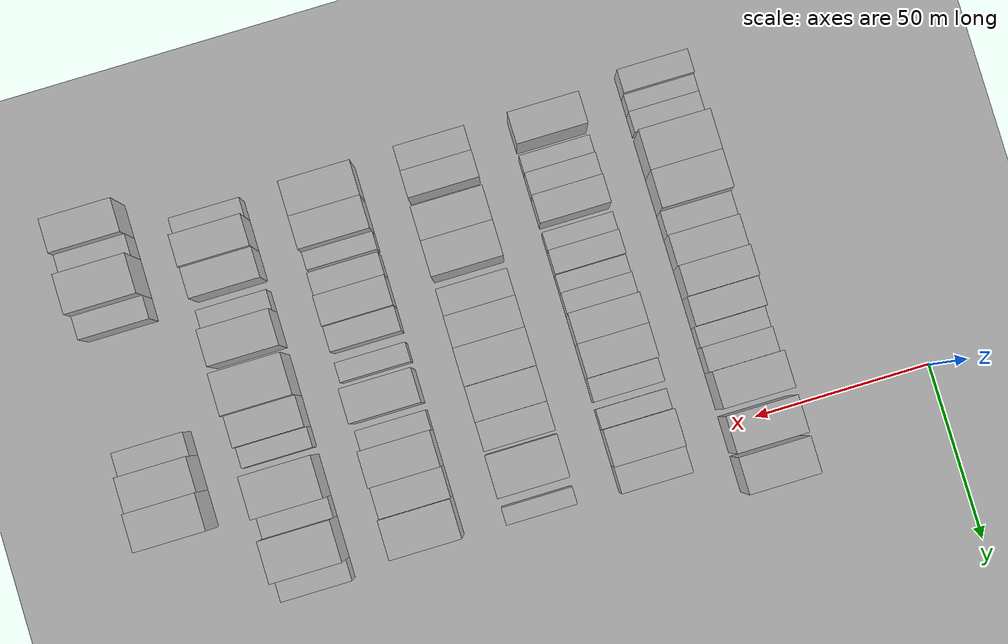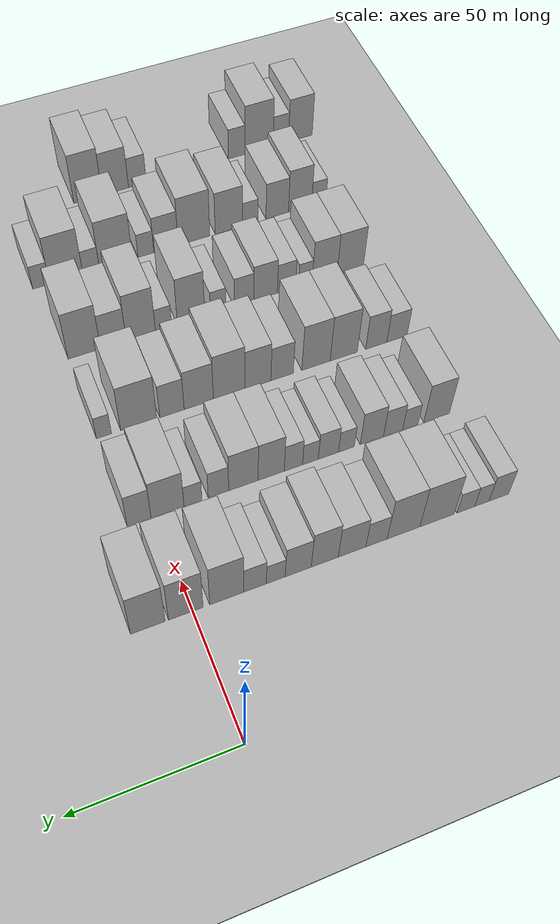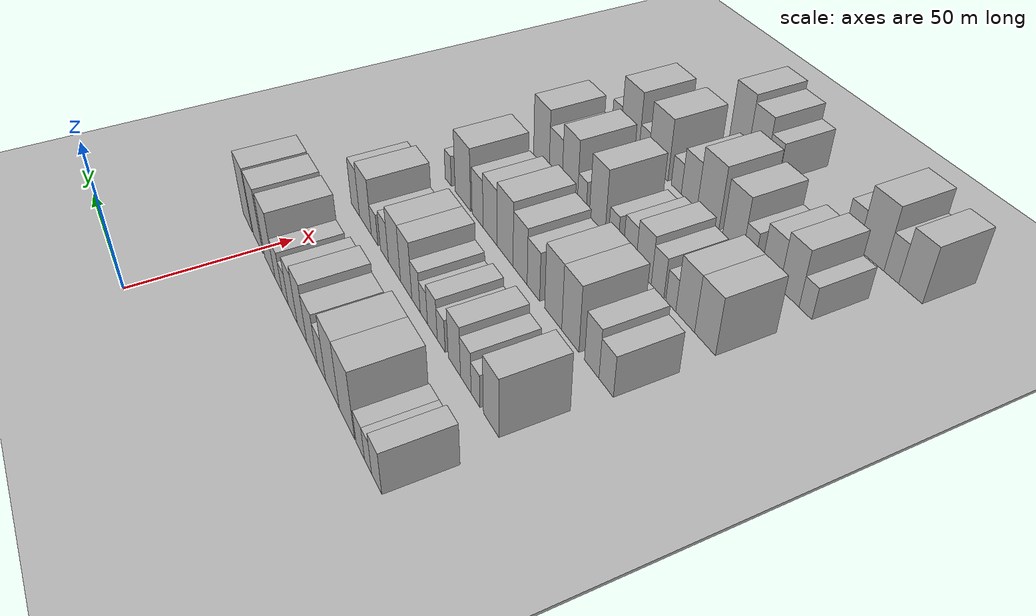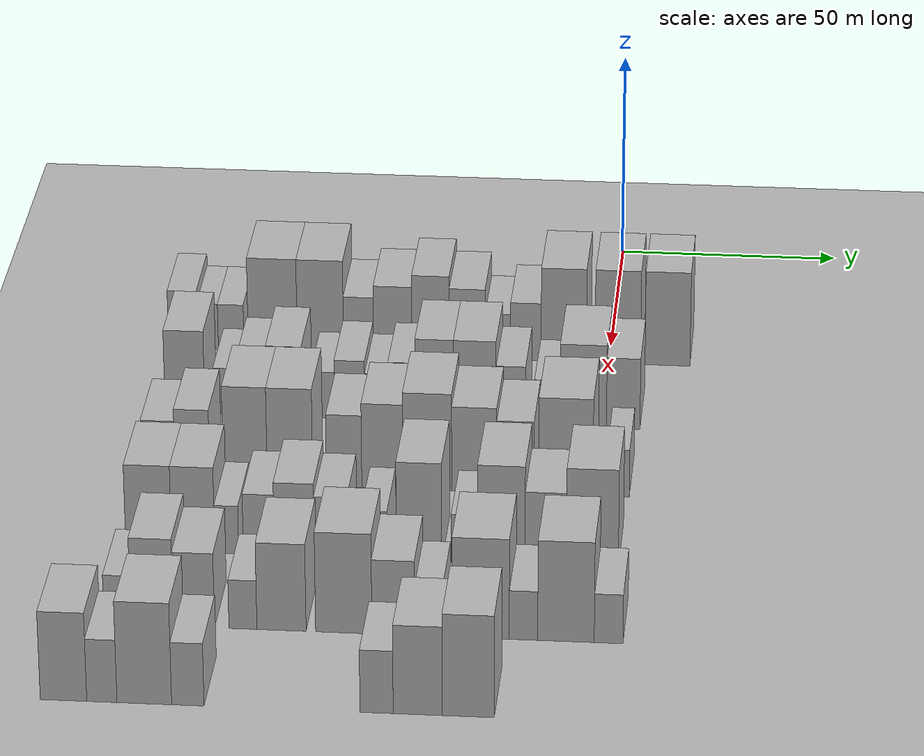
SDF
<sdf version="1.6">
 <world name="default">
  <include><name>ground_plane_1</name><uri>model://HANNAS_ground_plane</uri></include>
  <include>
   <name>ground_plane_2</name>
   <uri>model://HANNAS_ground_plane</uri>
   <pose>100 0 0  0 0 0</pose>
  </include>
  <model name="building_51">
   <static>1</static>
   <pose>50.0000 -97.6213 0 0.000000 0.000000 0.000000</pose>
   <link name="link">
    <pose>0 0 7.50 0 0 0</pose>
    <collision name="collision"><geometry><box><size>20.0000 6.6466 15.0000</size></box></geometry></collision>
    <visual name="visual">
     <cast_shadows>0</cast_shadows>
     <geometry><box><size>20.0000 6.6466 15.0000</size></box></geometry>
     <material>
      <script>
       <uri>model://HANNAS_wall/materials/scripts</uri>
       <uri>model://HANNAS_wall/materials/textures</uri>
       <name>vrc/HANNAS_wall</name>
      </script>
     </material>
    </visual>
   </link>
  </model>
  <model name="building_52">
   <static>1</static>
   <pose>50.0000 -91.8817 0 0.000000 0.000000 0.000000</pose>
   <link name="link">
    <pose>0 0 6.00 0 0 0</pose>
    <collision name="collision"><geometry><box><size>20.0000 4.8325 12.0000</size></box></geometry></collision>
    <visual name="visual">
     <cast_shadows>0</cast_shadows>
     <geometry><box><size>20.0000 4.8325 12.0000</size></box></geometry>
     <material>
      <script>
       <uri>model://HANNAS_wall/materials/scripts</uri>
       <uri>model://HANNAS_wall/materials/textures</uri>
       <name>vrc/HANNAS_wall</name>
      </script>
     </material>
    </visual>
   </link>
  </model>
  <model name="building_53">
   <static>1</static>
   <pose>50.0000 -86.5118 0 0.000000 0.000000 0.000000</pose>
   <link name="link">
    <pose>0 0 6.00 0 0 0</pose>
    <collision name="collision"><geometry><box><size>20.0000 5.9075 12.0000</size></box></geometry></collision>
    <visual name="visual">
     <cast_shadows>0</cast_shadows>
     <geometry><box><size>20.0000 5.9075 12.0000</size></box></geometry>
     <material>
      <script>
       <uri>model://HANNAS_wall/materials/scripts</uri>
       <uri>model://HANNAS_wall/materials/textures</uri>
       <name>vrc/HANNAS_wall</name>
      </script>
     </material>
    </visual>
   </link>
  </model>
  <model name="building_54">
   <static>1</static>
   <pose>50.0000 -76.9226 0 0.000000 0.000000 0.000000</pose>
   <link name="link">
    <pose>0 0 12.00 0 0 0</pose>
    <collision name="collision"><geometry><box><size>20.0000 11.2709 24.0000</size></box></geometry></collision>
    <visual name="visual">
     <cast_shadows>0</cast_shadows>
     <geometry><box><size>20.0000 11.2709 24.0000</size></box></geometry>
     <material>
      <script>
       <uri>model://HANNAS_wall/materials/scripts</uri>
       <uri>model://HANNAS_wall/materials/textures</uri>
       <name>vrc/HANNAS_wall</name>
      </script>
     </material>
    </visual>
   </link>
  </model>
  <model name="building_55">
   <static>1</static>
   <pose>50.0000 -65.9639 0 0.000000 0.000000 0.000000</pose>
   <link name="link">
    <pose>0 0 12.00 0 0 0</pose>
    <collision name="collision"><geometry><box><size>20.0000 10.6465 24.0000</size></box></geometry></collision>
    <visual name="visual">
     <cast_shadows>0</cast_shadows>
     <geometry><box><size>20.0000 10.6465 24.0000</size></box></geometry>
     <material>
      <script>
       <uri>model://HANNAS_wall/materials/scripts</uri>
       <uri>model://HANNAS_wall/materials/textures</uri>
       <name>vrc/HANNAS_wall</name>
      </script>
     </material>
    </visual>
   </link>
  </model>
  <model name="building_56">
   <static>1</static>
   <pose>50.0000 -57.1928 0 0.000000 0.000000 0.000000</pose>
   <link name="link">
    <pose>0 0 7.50 0 0 0</pose>
    <collision name="collision"><geometry><box><size>20.0000 6.8957 15.0000</size></box></geometry></collision>
    <visual name="visual">
     <cast_shadows>0</cast_shadows>
     <geometry><box><size>20.0000 6.8957 15.0000</size></box></geometry>
     <material>
      <script>
       <uri>model://HANNAS_wall/materials/scripts</uri>
       <uri>model://HANNAS_wall/materials/textures</uri>
       <name>vrc/HANNAS_wall</name>
      </script>
     </material>
    </visual>
   </link>
  </model>
  <model name="building_57">
   <static>1</static>
   <pose>50.0000 -49.3403 0 0.000000 0.000000 0.000000</pose>
   <link name="link">
    <pose>0 0 9.00 0 0 0</pose>
    <collision name="collision"><geometry><box><size>20.0000 8.8094 18.0000</size></box></geometry></collision>
    <visual name="visual">
     <cast_shadows>0</cast_shadows>
     <geometry><box><size>20.0000 8.8094 18.0000</size></box></geometry>
     <material>
      <script>
       <uri>model://HANNAS_wall/materials/scripts</uri>
       <uri>model://HANNAS_wall/materials/textures</uri>
       <name>vrc/HANNAS_wall</name>
      </script>
     </material>
    </visual>
   </link>
  </model>
  <model name="building_58">
   <static>1</static>
   <pose>50.0000 -40.6614 0 0.000000 0.000000 0.000000</pose>
   <link name="link">
    <pose>0 0 10.50 0 0 0</pose>
    <collision name="collision"><geometry><box><size>20.0000 8.5483 21.0000</size></box></geometry></collision>
    <visual name="visual">
     <cast_shadows>0</cast_shadows>
     <geometry><box><size>20.0000 8.5483 21.0000</size></box></geometry>
     <material>
      <script>
       <uri>model://HANNAS_wall/materials/scripts</uri>
       <uri>model://HANNAS_wall/materials/textures</uri>
       <name>vrc/HANNAS_wall</name>
      </script>
     </material>
    </visual>
   </link>
  </model>
  <model name="building_59">
   <static>1</static>
   <pose>50.0000 -32.2992 0 0.000000 0.000000 0.000000</pose>
   <link name="link">
    <pose>0 0 9.00 0 0 0</pose>
    <collision name="collision"><geometry><box><size>20.0000 8.1760 18.0000</size></box></geometry></collision>
    <visual name="visual">
     <cast_shadows>0</cast_shadows>
     <geometry><box><size>20.0000 8.1760 18.0000</size></box></geometry>
     <material>
      <script>
       <uri>model://HANNAS_wall/materials/scripts</uri>
       <uri>model://HANNAS_wall/materials/textures</uri>
       <name>vrc/HANNAS_wall</name>
      </script>
     </material>
    </visual>
   </link>
  </model>
  <model name="building_60">
   <static>1</static>
   <pose>50.0000 -25.2892 0 0.000000 0.000000 0.000000</pose>
   <link name="link">
    <pose>0 0 6.00 0 0 0</pose>
    <collision name="collision"><geometry><box><size>20.0000 5.8441 12.0000</size></box></geometry></collision>
    <visual name="visual">
     <cast_shadows>0</cast_shadows>
     <geometry><box><size>20.0000 5.8441 12.0000</size></box></geometry>
     <material>
      <script>
       <uri>model://HANNAS_wall/materials/scripts</uri>
       <uri>model://HANNAS_wall/materials/textures</uri>
       <name>vrc/HANNAS_wall</name>
      </script>
     </material>
    </visual>
   </link>
  </model>
  <model name="building_61">
   <static>1</static>
   <pose>50.0000 -18.8741 0 0.000000 0.000000 0.000000</pose>
   <link name="link">
    <pose>0 0 7.50 0 0 0</pose>
    <collision name="collision"><geometry><box><size>20.0000 6.9859 15.0000</size></box></geometry></collision>
    <visual name="visual">
     <cast_shadows>0</cast_shadows>
     <geometry><box><size>20.0000 6.9859 15.0000</size></box></geometry>
     <material>
      <script>
       <uri>model://HANNAS_wall/materials/scripts</uri>
       <uri>model://HANNAS_wall/materials/textures</uri>
       <name>vrc/HANNAS_wall</name>
      </script>
     </material>
    </visual>
   </link>
  </model>
  <model name="building_62">
   <static>1</static>
   <pose>50.0000 -10.2212 0 0.000000 0.000000 0.000000</pose>
   <link name="link">
    <pose>0 0 12.00 0 0 0</pose>
    <collision name="collision"><geometry><box><size>20.0000 10.3200 24.0000</size></box></geometry></collision>
    <visual name="visual">
     <cast_shadows>0</cast_shadows>
     <geometry><box><size>20.0000 10.3200 24.0000</size></box></geometry>
     <material>
      <script>
       <uri>model://HANNAS_wall/materials/scripts</uri>
       <uri>model://HANNAS_wall/materials/textures</uri>
       <name>vrc/HANNAS_wall</name>
      </script>
     </material>
    </visual>
   </link>
  </model>
  <model name="building_63">
   <static>1</static>
   <pose>50.0000 2.1206 0 0.000000 0.000000 0.000000</pose>
   <link name="link">
    <pose>0 0 12.00 0 0 0</pose>
    <collision name="collision"><geometry><box><size>20.0000 10.3635 24.0000</size></box></geometry></collision>
    <visual name="visual">
     <cast_shadows>0</cast_shadows>
     <geometry><box><size>20.0000 10.3635 24.0000</size></box></geometry>
     <material>
      <script>
       <uri>model://HANNAS_wall/materials/scripts</uri>
       <uri>model://HANNAS_wall/materials/textures</uri>
       <name>vrc/HANNAS_wall</name>
      </script>
     </material>
    </visual>
   </link>
  </model>
  <model name="building_64">
   <static>1</static>
   <pose>50.0000 13.4297 0 0.000000 0.000000 0.000000</pose>
   <link name="link">
    <pose>0 0 12.00 0 0 0</pose>
    <collision name="collision"><geometry><box><size>20.0000 10.2548 24.0000</size></box></geometry></collision>
    <visual name="visual">
     <cast_shadows>0</cast_shadows>
     <geometry><box><size>20.0000 10.2548 24.0000</size></box></geometry>
     <material>
      <script>
       <uri>model://HANNAS_wall/materials/scripts</uri>
       <uri>model://HANNAS_wall/materials/textures</uri>
       <name>vrc/HANNAS_wall</name>
      </script>
     </material>
    </visual>
   </link>
  </model>
  <model name="building_171">
   <static>1</static>
   <pose>82.0000 -93.0246 0 0.000000 0.000000 0.000000</pose>
   <link name="link">
    <pose>0 0 10.50 0 0 0</pose>
    <collision name="collision"><geometry><box><size>20.0000 8.9493 21.0000</size></box></geometry></collision>
    <visual name="visual">
     <cast_shadows>0</cast_shadows>
     <geometry><box><size>20.0000 8.9493 21.0000</size></box></geometry>
     <material>
      <script>
       <uri>model://HANNAS_wall/materials/scripts</uri>
       <uri>model://HANNAS_wall/materials/textures</uri>
       <name>vrc/HANNAS_wall</name>
      </script>
     </material>
    </visual>
   </link>
  </model>
  <model name="building_172">
   <static>1</static>
   <pose>82.0000 -83.8953 0 0.000000 0.000000 0.000000</pose>
   <link name="link">
    <pose>0 0 6.00 0 0 0</pose>
    <collision name="collision"><geometry><box><size>20.0000 5.3094 12.0000</size></box></geometry></collision>
    <visual name="visual">
     <cast_shadows>0</cast_shadows>
     <geometry><box><size>20.0000 5.3094 12.0000</size></box></geometry>
     <material>
      <script>
       <uri>model://HANNAS_wall/materials/scripts</uri>
       <uri>model://HANNAS_wall/materials/textures</uri>
       <name>vrc/HANNAS_wall</name>
      </script>
     </material>
    </visual>
   </link>
  </model>
  <model name="building_173">
   <static>1</static>
   <pose>82.0000 -77.9438 0 0.000000 0.000000 0.000000</pose>
   <link name="link">
    <pose>0 0 7.50 0 0 0</pose>
    <collision name="collision"><geometry><box><size>20.0000 6.5935 15.0000</size></box></geometry></collision>
    <visual name="visual">
     <cast_shadows>0</cast_shadows>
     <geometry><box><size>20.0000 6.5935 15.0000</size></box></geometry>
     <material>
      <script>
       <uri>model://HANNAS_wall/materials/scripts</uri>
       <uri>model://HANNAS_wall/materials/textures</uri>
       <name>vrc/HANNAS_wall</name>
      </script>
     </material>
    </visual>
   </link>
  </model>
  <model name="building_174">
   <static>1</static>
   <pose>82.0000 -70.6756 0 0.000000 0.000000 0.000000</pose>
   <link name="link">
    <pose>0 0 9.00 0 0 0</pose>
    <collision name="collision"><geometry><box><size>20.0000 7.9430 18.0000</size></box></geometry></collision>
    <visual name="visual">
     <cast_shadows>0</cast_shadows>
     <geometry><box><size>20.0000 7.9430 18.0000</size></box></geometry>
     <material>
      <script>
       <uri>model://HANNAS_wall/materials/scripts</uri>
       <uri>model://HANNAS_wall/materials/textures</uri>
       <name>vrc/HANNAS_wall</name>
      </script>
     </material>
    </visual>
   </link>
  </model>
  <model name="building_175">
   <static>1</static>
   <pose>82.0000 -62.0339 0 0.000000 0.000000 0.000000</pose>
   <link name="link">
    <pose>0 0 6.00 0 0 0</pose>
    <collision name="collision"><geometry><box><size>20.0000 5.3404 12.0000</size></box></geometry></collision>
    <visual name="visual">
     <cast_shadows>0</cast_shadows>
     <geometry><box><size>20.0000 5.3404 12.0000</size></box></geometry>
     <material>
      <script>
       <uri>model://HANNAS_wall/materials/scripts</uri>
       <uri>model://HANNAS_wall/materials/textures</uri>
       <name>vrc/HANNAS_wall</name>
      </script>
     </material>
    </visual>
   </link>
  </model>
  <model name="building_176">
   <static>1</static>
   <pose>82.0000 -55.9721 0 0.000000 0.000000 0.000000</pose>
   <link name="link">
    <pose>0 0 7.50 0 0 0</pose>
    <collision name="collision"><geometry><box><size>20.0000 6.7833 15.0000</size></box></geometry></collision>
    <visual name="visual">
     <cast_shadows>0</cast_shadows>
     <geometry><box><size>20.0000 6.7833 15.0000</size></box></geometry>
     <material>
      <script>
       <uri>model://HANNAS_wall/materials/scripts</uri>
       <uri>model://HANNAS_wall/materials/textures</uri>
       <name>vrc/HANNAS_wall</name>
      </script>
     </material>
    </visual>
   </link>
  </model>
  <model name="building_177">
   <static>1</static>
   <pose>82.0000 -49.9755 0 0.000000 0.000000 0.000000</pose>
   <link name="link">
    <pose>0 0 6.00 0 0 0</pose>
    <collision name="collision"><geometry><box><size>20.0000 5.2097 12.0000</size></box></geometry></collision>
    <visual name="visual">
     <cast_shadows>0</cast_shadows>
     <geometry><box><size>20.0000 5.2097 12.0000</size></box></geometry>
     <material>
      <script>
       <uri>model://HANNAS_wall/materials/scripts</uri>
       <uri>model://HANNAS_wall/materials/textures</uri>
       <name>vrc/HANNAS_wall</name>
      </script>
     </material>
    </visual>
   </link>
  </model>
  <model name="building_178">
   <static>1</static>
   <pose>82.0000 -44.3319 0 0.000000 0.000000 0.000000</pose>
   <link name="link">
    <pose>0 0 7.50 0 0 0</pose>
    <collision name="collision"><geometry><box><size>20.0000 6.0776 15.0000</size></box></geometry></collision>
    <visual name="visual">
     <cast_shadows>0</cast_shadows>
     <geometry><box><size>20.0000 6.0776 15.0000</size></box></geometry>
     <material>
      <script>
       <uri>model://HANNAS_wall/materials/scripts</uri>
       <uri>model://HANNAS_wall/materials/textures</uri>
       <name>vrc/HANNAS_wall</name>
      </script>
     </material>
    </visual>
   </link>
  </model>
  <model name="building_179">
   <static>1</static>
   <pose>82.0000 -37.0064 0 0.000000 0.000000 0.000000</pose>
   <link name="link">
    <pose>0 0 10.50 0 0 0</pose>
    <collision name="collision"><geometry><box><size>20.0000 8.5734 21.0000</size></box></geometry></collision>
    <visual name="visual">
     <cast_shadows>0</cast_shadows>
     <geometry><box><size>20.0000 8.5734 21.0000</size></box></geometry>
     <material>
      <script>
       <uri>model://HANNAS_wall/materials/scripts</uri>
       <uri>model://HANNAS_wall/materials/textures</uri>
       <name>vrc/HANNAS_wall</name>
      </script>
     </material>
    </visual>
   </link>
  </model>
  <model name="building_180">
   <static>1</static>
   <pose>82.0000 -27.9647 0 0.000000 0.000000 0.000000</pose>
   <link name="link">
    <pose>0 0 10.50 0 0 0</pose>
    <collision name="collision"><geometry><box><size>20.0000 9.5098 21.0000</size></box></geometry></collision>
    <visual name="visual">
     <cast_shadows>0</cast_shadows>
     <geometry><box><size>20.0000 9.5098 21.0000</size></box></geometry>
     <material>
      <script>
       <uri>model://HANNAS_wall/materials/scripts</uri>
       <uri>model://HANNAS_wall/materials/textures</uri>
       <name>vrc/HANNAS_wall</name>
      </script>
     </material>
    </visual>
   </link>
  </model>
  <model name="building_181">
   <static>1</static>
   <pose>82.0000 -19.9243 0 0.000000 0.000000 0.000000</pose>
   <link name="link">
    <pose>0 0 7.50 0 0 0</pose>
    <collision name="collision"><geometry><box><size>20.0000 6.5710 15.0000</size></box></geometry></collision>
    <visual name="visual">
     <cast_shadows>0</cast_shadows>
     <geometry><box><size>20.0000 6.5710 15.0000</size></box></geometry>
     <material>
      <script>
       <uri>model://HANNAS_wall/materials/scripts</uri>
       <uri>model://HANNAS_wall/materials/textures</uri>
       <name>vrc/HANNAS_wall</name>
      </script>
     </material>
    </visual>
   </link>
  </model>
  <model name="building_182">
   <static>1</static>
   <pose>82.0000 -11.7941 0 0.000000 0.000000 0.000000</pose>
   <link name="link">
    <pose>0 0 6.00 0 0 0</pose>
    <collision name="collision"><geometry><box><size>20.0000 5.6893 12.0000</size></box></geometry></collision>
    <visual name="visual">
     <cast_shadows>0</cast_shadows>
     <geometry><box><size>20.0000 5.6893 12.0000</size></box></geometry>
     <material>
      <script>
       <uri>model://HANNAS_wall/materials/scripts</uri>
       <uri>model://HANNAS_wall/materials/textures</uri>
       <name>vrc/HANNAS_wall</name>
      </script>
     </material>
    </visual>
   </link>
  </model>
  <model name="building_183">
   <static>1</static>
   <pose>82.0000 -3.7559 0 0.000000 0.000000 0.000000</pose>
   <link name="link">
    <pose>0 0 10.50 0 0 0</pose>
    <collision name="collision"><geometry><box><size>20.0000 10.3873 21.0000</size></box></geometry></collision>
    <visual name="visual">
     <cast_shadows>0</cast_shadows>
     <geometry><box><size>20.0000 10.3873 21.0000</size></box></geometry>
     <material>
      <script>
       <uri>model://HANNAS_wall/materials/scripts</uri>
       <uri>model://HANNAS_wall/materials/textures</uri>
       <name>vrc/HANNAS_wall</name>
      </script>
     </material>
    </visual>
   </link>
  </model>
  <model name="building_184">
   <static>1</static>
   <pose>82.0000 5.1672 0 0.000000 0.000000 0.000000</pose>
   <link name="link">
    <pose>0 0 9.00 0 0 0</pose>
    <collision name="collision"><geometry><box><size>20.0000 7.4589 18.0000</size></box></geometry></collision>
    <visual name="visual">
     <cast_shadows>0</cast_shadows>
     <geometry><box><size>20.0000 7.4589 18.0000</size></box></geometry>
     <material>
      <script>
       <uri>model://HANNAS_wall/materials/scripts</uri>
       <uri>model://HANNAS_wall/materials/textures</uri>
       <name>vrc/HANNAS_wall</name>
      </script>
     </material>
    </visual>
   </link>
  </model>
  <model name="building_290">
   <static>1</static>
   <pose>114.0000 -94.7264 0 0.000000 0.000000 0.000000</pose>
   <link name="link">
    <pose>0 0 7.50 0 0 0</pose>
    <collision name="collision"><geometry><box><size>20.0000 7.3418 15.0000</size></box></geometry></collision>
    <visual name="visual">
     <cast_shadows>0</cast_shadows>
     <geometry><box><size>20.0000 7.3418 15.0000</size></box></geometry>
     <material>
      <script>
       <uri>model://HANNAS_wall/materials/scripts</uri>
       <uri>model://HANNAS_wall/materials/textures</uri>
       <name>vrc/HANNAS_wall</name>
      </script>
     </material>
    </visual>
   </link>
  </model>
  <model name="building_291">
   <static>1</static>
   <pose>114.0000 -87.2454 0 0.000000 0.000000 0.000000</pose>
   <link name="link">
    <pose>0 0 9.00 0 0 0</pose>
    <collision name="collision"><geometry><box><size>20.0000 7.6203 18.0000</size></box></geometry></collision>
    <visual name="visual">
     <cast_shadows>0</cast_shadows>
     <geometry><box><size>20.0000 7.6203 18.0000</size></box></geometry>
     <material>
      <script>
       <uri>model://HANNAS_wall/materials/scripts</uri>
       <uri>model://HANNAS_wall/materials/textures</uri>
       <name>vrc/HANNAS_wall</name>
      </script>
     </material>
    </visual>
   </link>
  </model>
  <model name="building_292">
   <static>1</static>
   <pose>114.0000 -75.6227 0 0.000000 0.000000 0.000000</pose>
   <link name="link">
    <pose>0 0 12.00 0 0 0</pose>
    <collision name="collision"><geometry><box><size>20.0000 9.6250 24.0000</size></box></geometry></collision>
    <visual name="visual">
     <cast_shadows>0</cast_shadows>
     <geometry><box><size>20.0000 9.6250 24.0000</size></box></geometry>
     <material>
      <script>
       <uri>model://HANNAS_wall/materials/scripts</uri>
       <uri>model://HANNAS_wall/materials/textures</uri>
       <name>vrc/HANNAS_wall</name>
      </script>
     </material>
    </visual>
   </link>
  </model>
  <model name="building_293">
   <static>1</static>
   <pose>114.0000 -65.8164 0 0.000000 0.000000 0.000000</pose>
   <link name="link">
    <pose>0 0 12.00 0 0 0</pose>
    <collision name="collision"><geometry><box><size>20.0000 9.9877 24.0000</size></box></geometry></collision>
    <visual name="visual">
     <cast_shadows>0</cast_shadows>
     <geometry><box><size>20.0000 9.9877 24.0000</size></box></geometry>
     <material>
      <script>
       <uri>model://HANNAS_wall/materials/scripts</uri>
       <uri>model://HANNAS_wall/materials/textures</uri>
       <name>vrc/HANNAS_wall</name>
      </script>
     </material>
    </visual>
   </link>
  </model>
  <model name="building_294">
   <static>1</static>
   <pose>114.0000 -53.9530 0 0.000000 0.000000 0.000000</pose>
   <link name="link">
    <pose>0 0 9.00 0 0 0</pose>
    <collision name="collision"><geometry><box><size>20.0000 7.7391 18.0000</size></box></geometry></collision>
    <visual name="visual">
     <cast_shadows>0</cast_shadows>
     <geometry><box><size>20.0000 7.7391 18.0000</size></box></geometry>
     <material>
      <script>
       <uri>model://HANNAS_wall/materials/scripts</uri>
       <uri>model://HANNAS_wall/materials/textures</uri>
       <name>vrc/HANNAS_wall</name>
      </script>
     </material>
    </visual>
   </link>
  </model>
  <model name="building_295">
   <static>1</static>
   <pose>114.0000 -45.5780 0 0.000000 0.000000 0.000000</pose>
   <link name="link">
    <pose>0 0 10.50 0 0 0</pose>
    <collision name="collision"><geometry><box><size>20.0000 9.0108 21.0000</size></box></geometry></collision>
    <visual name="visual">
     <cast_shadows>0</cast_shadows>
     <geometry><box><size>20.0000 9.0108 21.0000</size></box></geometry>
     <material>
      <script>
       <uri>model://HANNAS_wall/materials/scripts</uri>
       <uri>model://HANNAS_wall/materials/textures</uri>
       <name>vrc/HANNAS_wall</name>
      </script>
     </material>
    </visual>
   </link>
  </model>
  <model name="building_296">
   <static>1</static>
   <pose>114.0000 -35.7423 0 0.000000 0.000000 0.000000</pose>
   <link name="link">
    <pose>0 0 12.00 0 0 0</pose>
    <collision name="collision"><geometry><box><size>20.0000 10.6607 24.0000</size></box></geometry></collision>
    <visual name="visual">
     <cast_shadows>0</cast_shadows>
     <geometry><box><size>20.0000 10.6607 24.0000</size></box></geometry>
     <material>
      <script>
       <uri>model://HANNAS_wall/materials/scripts</uri>
       <uri>model://HANNAS_wall/materials/textures</uri>
       <name>vrc/HANNAS_wall</name>
      </script>
     </material>
    </visual>
   </link>
  </model>
  <model name="building_297">
   <static>1</static>
   <pose>114.0000 -25.5016 0 0.000000 0.000000 0.000000</pose>
   <link name="link">
    <pose>0 0 10.50 0 0 0</pose>
    <collision name="collision"><geometry><box><size>20.0000 9.8206 21.0000</size></box></geometry></collision>
    <visual name="visual">
     <cast_shadows>0</cast_shadows>
     <geometry><box><size>20.0000 9.8206 21.0000</size></box></geometry>
     <material>
      <script>
       <uri>model://HANNAS_wall/materials/scripts</uri>
       <uri>model://HANNAS_wall/materials/textures</uri>
       <name>vrc/HANNAS_wall</name>
      </script>
     </material>
    </visual>
   </link>
  </model>
  <model name="building_298">
   <static>1</static>
   <pose>114.0000 -16.5375 0 0.000000 0.000000 0.000000</pose>
   <link name="link">
    <pose>0 0 9.00 0 0 0</pose>
    <collision name="collision"><geometry><box><size>20.0000 8.1075 18.0000</size></box></geometry></collision>
    <visual name="visual">
     <cast_shadows>0</cast_shadows>
     <geometry><box><size>20.0000 8.1075 18.0000</size></box></geometry>
     <material>
      <script>
       <uri>model://HANNAS_wall/materials/scripts</uri>
       <uri>model://HANNAS_wall/materials/textures</uri>
       <name>vrc/HANNAS_wall</name>
      </script>
     </material>
    </visual>
   </link>
  </model>
  <model name="building_299">
   <static>1</static>
   <pose>114.0000 -5.5475 0 0.000000 0.000000 0.000000</pose>
   <link name="link">
    <pose>0 0 12.00 0 0 0</pose>
    <collision name="collision"><geometry><box><size>20.0000 11.8725 24.0000</size></box></geometry></collision>
    <visual name="visual">
     <cast_shadows>0</cast_shadows>
     <geometry><box><size>20.0000 11.8725 24.0000</size></box></geometry>
     <material>
      <script>
       <uri>model://HANNAS_wall/materials/scripts</uri>
       <uri>model://HANNAS_wall/materials/textures</uri>
       <name>vrc/HANNAS_wall</name>
      </script>
     </material>
    </visual>
   </link>
  </model>
  <model name="building_300">
   <static>1</static>
   <pose>114.0000 5.8387 0 0.000000 0.000000 0.000000</pose>
   <link name="link">
    <pose>0 0 6.00 0 0 0</pose>
    <collision name="collision"><geometry><box><size>20.0000 4.9000 12.0000</size></box></geometry></collision>
    <visual name="visual">
     <cast_shadows>0</cast_shadows>
     <geometry><box><size>20.0000 4.9000 12.0000</size></box></geometry>
     <material>
      <script>
       <uri>model://HANNAS_wall/materials/scripts</uri>
       <uri>model://HANNAS_wall/materials/textures</uri>
       <name>vrc/HANNAS_wall</name>
      </script>
     </material>
    </visual>
   </link>
  </model>
  <model name="building_408">
   <static>1</static>
   <pose>146.0000 -92.5635 0 0.000000 0.000000 0.000000</pose>
   <link name="link">
    <pose>0 0 10.50 0 0 0</pose>
    <collision name="collision"><geometry><box><size>20.0000 9.8389 21.0000</size></box></geometry></collision>
    <visual name="visual">
     <cast_shadows>0</cast_shadows>
     <geometry><box><size>20.0000 9.8389 21.0000</size></box></geometry>
     <material>
      <script>
       <uri>model://HANNAS_wall/materials/scripts</uri>
       <uri>model://HANNAS_wall/materials/textures</uri>
       <name>vrc/HANNAS_wall</name>
      </script>
     </material>
    </visual>
   </link>
  </model>
  <model name="building_409">
   <static>1</static>
   <pose>146.0000 -83.0064 0 0.000000 0.000000 0.000000</pose>
   <link name="link">
    <pose>0 0 10.50 0 0 0</pose>
    <collision name="collision"><geometry><box><size>20.0000 9.2752 21.0000</size></box></geometry></collision>
    <visual name="visual">
     <cast_shadows>0</cast_shadows>
     <geometry><box><size>20.0000 9.2752 21.0000</size></box></geometry>
     <material>
      <script>
       <uri>model://HANNAS_wall/materials/scripts</uri>
       <uri>model://HANNAS_wall/materials/textures</uri>
       <name>vrc/HANNAS_wall</name>
      </script>
     </material>
    </visual>
   </link>
  </model>
  <model name="building_410">
   <static>1</static>
   <pose>146.0000 -75.8143 0 0.000000 0.000000 0.000000</pose>
   <link name="link">
    <pose>0 0 6.00 0 0 0</pose>
    <collision name="collision"><geometry><box><size>20.0000 5.1091 12.0000</size></box></geometry></collision>
    <visual name="visual">
     <cast_shadows>0</cast_shadows>
     <geometry><box><size>20.0000 5.1091 12.0000</size></box></geometry>
     <material>
      <script>
       <uri>model://HANNAS_wall/materials/scripts</uri>
       <uri>model://HANNAS_wall/materials/textures</uri>
       <name>vrc/HANNAS_wall</name>
      </script>
     </material>
    </visual>
   </link>
  </model>
  <model name="building_411">
   <static>1</static>
   <pose>146.0000 -68.9345 0 0.000000 0.000000 0.000000</pose>
   <link name="link">
    <pose>0 0 7.50 0 0 0</pose>
    <collision name="collision"><geometry><box><size>20.0000 6.6504 15.0000</size></box></geometry></collision>
    <visual name="visual">
     <cast_shadows>0</cast_shadows>
     <geometry><box><size>20.0000 6.6504 15.0000</size></box></geometry>
     <material>
      <script>
       <uri>model://HANNAS_wall/materials/scripts</uri>
       <uri>model://HANNAS_wall/materials/textures</uri>
       <name>vrc/HANNAS_wall</name>
      </script>
     </material>
    </visual>
   </link>
  </model>
  <model name="building_412">
   <static>1</static>
   <pose>146.0000 -61.3336 0 0.000000 0.000000 0.000000</pose>
   <link name="link">
    <pose>0 0 9.00 0 0 0</pose>
    <collision name="collision"><geometry><box><size>20.0000 8.5514 18.0000</size></box></geometry></collision>
    <visual name="visual">
     <cast_shadows>0</cast_shadows>
     <geometry><box><size>20.0000 8.5514 18.0000</size></box></geometry>
     <material>
      <script>
       <uri>model://HANNAS_wall/materials/scripts</uri>
       <uri>model://HANNAS_wall/materials/textures</uri>
       <name>vrc/HANNAS_wall</name>
      </script>
     </material>
    </visual>
   </link>
  </model>
  <model name="building_413">
   <static>1</static>
   <pose>146.0000 -53.5289 0 0.000000 0.000000 0.000000</pose>
   <link name="link">
    <pose>0 0 7.50 0 0 0</pose>
    <collision name="collision"><geometry><box><size>20.0000 7.0580 15.0000</size></box></geometry></collision>
    <visual name="visual">
     <cast_shadows>0</cast_shadows>
     <geometry><box><size>20.0000 7.0580 15.0000</size></box></geometry>
     <material>
      <script>
       <uri>model://HANNAS_wall/materials/scripts</uri>
       <uri>model://HANNAS_wall/materials/textures</uri>
       <name>vrc/HANNAS_wall</name>
      </script>
     </material>
    </visual>
   </link>
  </model>
  <model name="building_414">
   <static>1</static>
   <pose>146.0000 -44.2437 0 0.000000 0.000000 0.000000</pose>
   <link name="link">
    <pose>0 0 6.00 0 0 0</pose>
    <collision name="collision"><geometry><box><size>20.0000 5.5124 12.0000</size></box></geometry></collision>
    <visual name="visual">
     <cast_shadows>0</cast_shadows>
     <geometry><box><size>20.0000 5.5124 12.0000</size></box></geometry>
     <material>
      <script>
       <uri>model://HANNAS_wall/materials/scripts</uri>
       <uri>model://HANNAS_wall/materials/textures</uri>
       <name>vrc/HANNAS_wall</name>
      </script>
     </material>
    </visual>
   </link>
  </model>
  <model name="building_415">
   <static>1</static>
   <pose>146.0000 -34.6544 0 0.000000 0.000000 0.000000</pose>
   <link name="link">
    <pose>0 0 12.00 0 0 0</pose>
    <collision name="collision"><geometry><box><size>20.0000 9.6662 24.0000</size></box></geometry></collision>
    <visual name="visual">
     <cast_shadows>0</cast_shadows>
     <geometry><box><size>20.0000 9.6662 24.0000</size></box></geometry>
     <material>
      <script>
       <uri>model://HANNAS_wall/materials/scripts</uri>
       <uri>model://HANNAS_wall/materials/textures</uri>
       <name>vrc/HANNAS_wall</name>
      </script>
     </material>
    </visual>
   </link>
  </model>
  <model name="building_416">
   <static>1</static>
   <pose>146.0000 -24.9984 0 0.000000 0.000000 0.000000</pose>
   <link name="link">
    <pose>0 0 6.00 0 0 0</pose>
    <collision name="collision"><geometry><box><size>20.0000 5.6457 12.0000</size></box></geometry></collision>
    <visual name="visual">
     <cast_shadows>0</cast_shadows>
     <geometry><box><size>20.0000 5.6457 12.0000</size></box></geometry>
     <material>
      <script>
       <uri>model://HANNAS_wall/materials/scripts</uri>
       <uri>model://HANNAS_wall/materials/textures</uri>
       <name>vrc/HANNAS_wall</name>
      </script>
     </material>
    </visual>
   </link>
  </model>
  <model name="building_417">
   <static>1</static>
   <pose>146.0000 -17.1208 0 0.000000 0.000000 0.000000</pose>
   <link name="link">
    <pose>0 0 12.00 0 0 0</pose>
    <collision name="collision"><geometry><box><size>20.0000 10.1096 24.0000</size></box></geometry></collision>
    <visual name="visual">
     <cast_shadows>0</cast_shadows>
     <geometry><box><size>20.0000 10.1096 24.0000</size></box></geometry>
     <material>
      <script>
       <uri>model://HANNAS_wall/materials/scripts</uri>
       <uri>model://HANNAS_wall/materials/textures</uri>
       <name>vrc/HANNAS_wall</name>
      </script>
     </material>
    </visual>
   </link>
  </model>
  <model name="building_418">
   <static>1</static>
   <pose>146.0000 -7.6691 0 0.000000 0.000000 0.000000</pose>
   <link name="link">
    <pose>0 0 9.00 0 0 0</pose>
    <collision name="collision"><geometry><box><size>20.0000 8.7937 18.0000</size></box></geometry></collision>
    <visual name="visual">
     <cast_shadows>0</cast_shadows>
     <geometry><box><size>20.0000 8.7937 18.0000</size></box></geometry>
     <material>
      <script>
       <uri>model://HANNAS_wall/materials/scripts</uri>
       <uri>model://HANNAS_wall/materials/textures</uri>
       <name>vrc/HANNAS_wall</name>
      </script>
     </material>
    </visual>
   </link>
  </model>
  <model name="building_419">
   <static>1</static>
   <pose>146.0000 2.2381 0 0.000000 0.000000 0.000000</pose>
   <link name="link">
    <pose>0 0 12.00 0 0 0</pose>
    <collision name="collision"><geometry><box><size>20.0000 11.0206 24.0000</size></box></geometry></collision>
    <visual name="visual">
     <cast_shadows>0</cast_shadows>
     <geometry><box><size>20.0000 11.0206 24.0000</size></box></geometry>
     <material>
      <script>
       <uri>model://HANNAS_wall/materials/scripts</uri>
       <uri>model://HANNAS_wall/materials/textures</uri>
       <name>vrc/HANNAS_wall</name>
      </script>
     </material>
    </visual>
   </link>
  </model>
  <model name="building_532">
   <static>1</static>
   <pose>178.0000 -94.8291 0 0.000000 0.000000 0.000000</pose>
   <link name="link">
    <pose>0 0 6.00 0 0 0</pose>
    <collision name="collision"><geometry><box><size>20.0000 5.6068 12.0000</size></box></geometry></collision>
    <visual name="visual">
     <cast_shadows>0</cast_shadows>
     <geometry><box><size>20.0000 5.6068 12.0000</size></box></geometry>
     <material>
      <script>
       <uri>model://HANNAS_wall/materials/scripts</uri>
       <uri>model://HANNAS_wall/materials/textures</uri>
       <name>vrc/HANNAS_wall</name>
      </script>
     </material>
    </visual>
   </link>
  </model>
  <model name="building_533">
   <static>1</static>
   <pose>178.0000 -87.5703 0 0.000000 0.000000 0.000000</pose>
   <link name="link">
    <pose>0 0 10.50 0 0 0</pose>
    <collision name="collision"><geometry><box><size>20.0000 8.9107 21.0000</size></box></geometry></collision>
    <visual name="visual">
     <cast_shadows>0</cast_shadows>
     <geometry><box><size>20.0000 8.9107 21.0000</size></box></geometry>
     <material>
      <script>
       <uri>model://HANNAS_wall/materials/scripts</uri>
       <uri>model://HANNAS_wall/materials/textures</uri>
       <name>vrc/HANNAS_wall</name>
      </script>
     </material>
    </visual>
   </link>
  </model>
  <model name="building_534">
   <static>1</static>
   <pose>178.0000 -78.7898 0 0.000000 0.000000 0.000000</pose>
   <link name="link">
    <pose>0 0 9.00 0 0 0</pose>
    <collision name="collision"><geometry><box><size>20.0000 8.6504 18.0000</size></box></geometry></collision>
    <visual name="visual">
     <cast_shadows>0</cast_shadows>
     <geometry><box><size>20.0000 8.6504 18.0000</size></box></geometry>
     <material>
      <script>
       <uri>model://HANNAS_wall/materials/scripts</uri>
       <uri>model://HANNAS_wall/materials/textures</uri>
       <name>vrc/HANNAS_wall</name>
      </script>
     </material>
    </visual>
   </link>
  </model>
  <model name="building_535">
   <static>1</static>
   <pose>178.0000 -68.5389 0 0.000000 0.000000 0.000000</pose>
   <link name="link">
    <pose>0 0 6.00 0 0 0</pose>
    <collision name="collision"><geometry><box><size>20.0000 5.8515 12.0000</size></box></geometry></collision>
    <visual name="visual">
     <cast_shadows>0</cast_shadows>
     <geometry><box><size>20.0000 5.8515 12.0000</size></box></geometry>
     <material>
      <script>
       <uri>model://HANNAS_wall/materials/scripts</uri>
       <uri>model://HANNAS_wall/materials/textures</uri>
       <name>vrc/HANNAS_wall</name>
      </script>
     </material>
    </visual>
   </link>
  </model>
  <model name="building_536">
   <static>1</static>
   <pose>178.0000 -60.4742 0 0.000000 0.000000 0.000000</pose>
   <link name="link">
    <pose>0 0 10.50 0 0 0</pose>
    <collision name="collision"><geometry><box><size>20.0000 10.2779 21.0000</size></box></geometry></collision>
    <visual name="visual">
     <cast_shadows>0</cast_shadows>
     <geometry><box><size>20.0000 10.2779 21.0000</size></box></geometry>
     <material>
      <script>
       <uri>model://HANNAS_wall/materials/scripts</uri>
       <uri>model://HANNAS_wall/materials/textures</uri>
       <name>vrc/HANNAS_wall</name>
      </script>
     </material>
    </visual>
   </link>
  </model>
  <model name="building_537">
   <static>1</static>
   <pose>178.0000 -47.4679 0 0.000000 0.000000 0.000000</pose>
   <link name="link">
    <pose>0 0 12.00 0 0 0</pose>
    <collision name="collision"><geometry><box><size>20.0000 11.7346 24.0000</size></box></geometry></collision>
    <visual name="visual">
     <cast_shadows>0</cast_shadows>
     <geometry><box><size>20.0000 11.7346 24.0000</size></box></geometry>
     <material>
      <script>
       <uri>model://HANNAS_wall/materials/scripts</uri>
       <uri>model://HANNAS_wall/materials/textures</uri>
       <name>vrc/HANNAS_wall</name>
      </script>
     </material>
    </visual>
   </link>
  </model>
  <model name="building_538">
   <static>1</static>
   <pose>178.0000 -37.1587 0 0.000000 0.000000 0.000000</pose>
   <link name="link">
    <pose>0 0 9.00 0 0 0</pose>
    <collision name="collision"><geometry><box><size>20.0000 8.8837 18.0000</size></box></geometry></collision>
    <visual name="visual">
     <cast_shadows>0</cast_shadows>
     <geometry><box><size>20.0000 8.8837 18.0000</size></box></geometry>
     <material>
      <script>
       <uri>model://HANNAS_wall/materials/scripts</uri>
       <uri>model://HANNAS_wall/materials/textures</uri>
       <name>vrc/HANNAS_wall</name>
      </script>
     </material>
    </visual>
   </link>
  </model>
  <model name="building_539">
   <static>1</static>
   <pose>178.0000 -29.8137 0 0.000000 0.000000 0.000000</pose>
   <link name="link">
    <pose>0 0 6.00 0 0 0</pose>
    <collision name="collision"><geometry><box><size>20.0000 5.8065 12.0000</size></box></geometry></collision>
    <visual name="visual">
     <cast_shadows>0</cast_shadows>
     <geometry><box><size>20.0000 5.8065 12.0000</size></box></geometry>
     <material>
      <script>
       <uri>model://HANNAS_wall/materials/scripts</uri>
       <uri>model://HANNAS_wall/materials/textures</uri>
       <name>vrc/HANNAS_wall</name>
      </script>
     </material>
    </visual>
   </link>
  </model>
  <model name="building_540">
   <static>1</static>
   <pose>178.0000 -18.9701 0 0.000000 0.000000 0.000000</pose>
   <link name="link">
    <pose>0 0 12.00 0 0 0</pose>
    <collision name="collision"><geometry><box><size>20.0000 11.8806 24.0000</size></box></geometry></collision>
    <visual name="visual">
     <cast_shadows>0</cast_shadows>
     <geometry><box><size>20.0000 11.8806 24.0000</size></box></geometry>
     <material>
      <script>
       <uri>model://HANNAS_wall/materials/scripts</uri>
       <uri>model://HANNAS_wall/materials/textures</uri>
       <name>vrc/HANNAS_wall</name>
      </script>
     </material>
    </visual>
   </link>
  </model>
  <model name="building_541">
   <static>1</static>
   <pose>178.0000 -10.0762 0 0.000000 0.000000 0.000000</pose>
   <link name="link">
    <pose>0 0 6.00 0 0 0</pose>
    <collision name="collision"><geometry><box><size>20.0000 5.9072 12.0000</size></box></geometry></collision>
    <visual name="visual">
     <cast_shadows>0</cast_shadows>
     <geometry><box><size>20.0000 5.9072 12.0000</size></box></geometry>
     <material>
      <script>
       <uri>model://HANNAS_wall/materials/scripts</uri>
       <uri>model://HANNAS_wall/materials/textures</uri>
       <name>vrc/HANNAS_wall</name>
      </script>
     </material>
    </visual>
   </link>
  </model>
  <model name="building_542">
   <static>1</static>
   <pose>178.0000 -1.2645 0 0.000000 0.000000 0.000000</pose>
   <link name="link">
    <pose>0 0 12.00 0 0 0</pose>
    <collision name="collision"><geometry><box><size>20.0000 11.7163 24.0000</size></box></geometry></collision>
    <visual name="visual">
     <cast_shadows>0</cast_shadows>
     <geometry><box><size>20.0000 11.7163 24.0000</size></box></geometry>
     <material>
      <script>
       <uri>model://HANNAS_wall/materials/scripts</uri>
       <uri>model://HANNAS_wall/materials/textures</uri>
       <name>vrc/HANNAS_wall</name>
      </script>
     </material>
    </visual>
   </link>
  </model>
  <model name="building_543">
   <static>1</static>
   <pose>178.0000 7.5703 0 0.000000 0.000000 0.000000</pose>
   <link name="link">
    <pose>0 0 6.00 0 0 0</pose>
    <collision name="collision"><geometry><box><size>20.0000 5.9531 12.0000</size></box></geometry></collision>
    <visual name="visual">
     <cast_shadows>0</cast_shadows>
     <geometry><box><size>20.0000 5.9531 12.0000</size></box></geometry>
     <material>
      <script>
       <uri>model://HANNAS_wall/materials/scripts</uri>
       <uri>model://HANNAS_wall/materials/textures</uri>
       <name>vrc/HANNAS_wall</name>
      </script>
     </material>
    </visual>
   </link>
  </model>
  <model name="building_646">
   <static>1</static>
   <pose>210.0000 -101.3651 0 0.000000 0.000000 0.000000</pose>
   <link name="link">
    <pose>0 0 10.50 0 0 0</pose>
    <collision name="collision"><geometry><box><size>20.0000 9.5225 21.0000</size></box></geometry></collision>
    <visual name="visual">
     <cast_shadows>0</cast_shadows>
     <geometry><box><size>20.0000 9.5225 21.0000</size></box></geometry>
     <material>
      <script>
       <uri>model://HANNAS_wall/materials/scripts</uri>
       <uri>model://HANNAS_wall/materials/textures</uri>
       <name>vrc/HANNAS_wall</name>
      </script>
     </material>
    </visual>
   </link>
  </model>
  <model name="building_647">
   <static>1</static>
   <pose>210.0000 -93.5148 0 0.000000 0.000000 0.000000</pose>
   <link name="link">
    <pose>0 0 7.50 0 0 0</pose>
    <collision name="collision"><geometry><box><size>20.0000 6.1782 15.0000</size></box></geometry></collision>
    <visual name="visual">
     <cast_shadows>0</cast_shadows>
     <geometry><box><size>20.0000 6.1782 15.0000</size></box></geometry>
     <material>
      <script>
       <uri>model://HANNAS_wall/materials/scripts</uri>
       <uri>model://HANNAS_wall/materials/textures</uri>
       <name>vrc/HANNAS_wall</name>
      </script>
     </material>
    </visual>
   </link>
  </model>
  <model name="building_648">
   <static>1</static>
   <pose>210.0000 -84.8414 0 0.000000 0.000000 0.000000</pose>
   <link name="link">
    <pose>0 0 12.00 0 0 0</pose>
    <collision name="collision"><geometry><box><size>20.0000 11.1687 24.0000</size></box></geometry></collision>
    <visual name="visual">
     <cast_shadows>0</cast_shadows>
     <geometry><box><size>20.0000 11.1687 24.0000</size></box></geometry>
     <material>
      <script>
       <uri>model://HANNAS_wall/materials/scripts</uri>
       <uri>model://HANNAS_wall/materials/textures</uri>
       <name>vrc/HANNAS_wall</name>
      </script>
     </material>
    </visual>
   </link>
  </model>
  <model name="building_649">
   <static>1</static>
   <pose>210.0000 -75.9501 0 0.000000 0.000000 0.000000</pose>
   <link name="link">
    <pose>0 0 7.50 0 0 0</pose>
    <collision name="collision"><geometry><box><size>20.0000 6.6139 15.0000</size></box></geometry></collision>
    <visual name="visual">
     <cast_shadows>0</cast_shadows>
     <geometry><box><size>20.0000 6.6139 15.0000</size></box></geometry>
     <material>
      <script>
       <uri>model://HANNAS_wall/materials/scripts</uri>
       <uri>model://HANNAS_wall/materials/textures</uri>
       <name>vrc/HANNAS_wall</name>
      </script>
     </material>
    </visual>
   </link>
  </model>
  <model name="building_650">
   <static>1</static>
   <pose>210.0000 -37.5216 0 0.000000 0.000000 0.000000</pose>
   <link name="link">
    <pose>0 0 7.50 0 0 0</pose>
    <collision name="collision"><geometry><box><size>20.0000 6.7477 15.0000</size></box></geometry></collision>
    <visual name="visual">
     <cast_shadows>0</cast_shadows>
     <geometry><box><size>20.0000 6.7477 15.0000</size></box></geometry>
     <material>
      <script>
       <uri>model://HANNAS_wall/materials/scripts</uri>
       <uri>model://HANNAS_wall/materials/textures</uri>
       <name>vrc/HANNAS_wall</name>
      </script>
     </material>
    </visual>
   </link>
  </model>
  <model name="building_651">
   <static>1</static>
   <pose>210.0000 -29.1736 0 0.000000 0.000000 0.000000</pose>
   <link name="link">
    <pose>0 0 10.50 0 0 0</pose>
    <collision name="collision"><geometry><box><size>20.0000 9.9484 21.0000</size></box></geometry></collision>
    <visual name="visual">
     <cast_shadows>0</cast_shadows>
     <geometry><box><size>20.0000 9.9484 21.0000</size></box></geometry>
     <material>
      <script>
       <uri>model://HANNAS_wall/materials/scripts</uri>
       <uri>model://HANNAS_wall/materials/textures</uri>
       <name>vrc/HANNAS_wall</name>
      </script>
     </material>
    </visual>
   </link>
  </model>
  <model name="building_652">
   <static>1</static>
   <pose>210.0000 -18.9268 0 0.000000 0.000000 0.000000</pose>
   <link name="link">
    <pose>0 0 12.00 0 0 0</pose>
    <collision name="collision"><geometry><box><size>20.0000 10.5452 24.0000</size></box></geometry></collision>
    <visual name="visual">
     <cast_shadows>0</cast_shadows>
     <geometry><box><size>20.0000 10.5452 24.0000</size></box></geometry>
     <material>
      <script>
       <uri>model://HANNAS_wall/materials/scripts</uri>
       <uri>model://HANNAS_wall/materials/textures</uri>
       <name>vrc/HANNAS_wall</name>
      </script>
     </material>
    </visual>
   </link>
  </model>
 </world>
</sdf>
